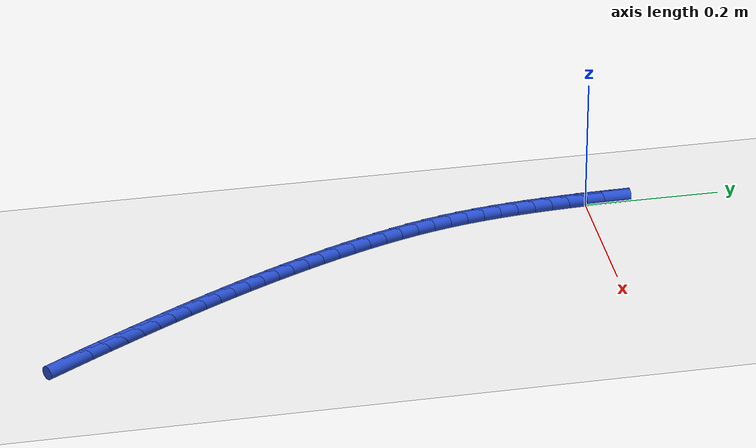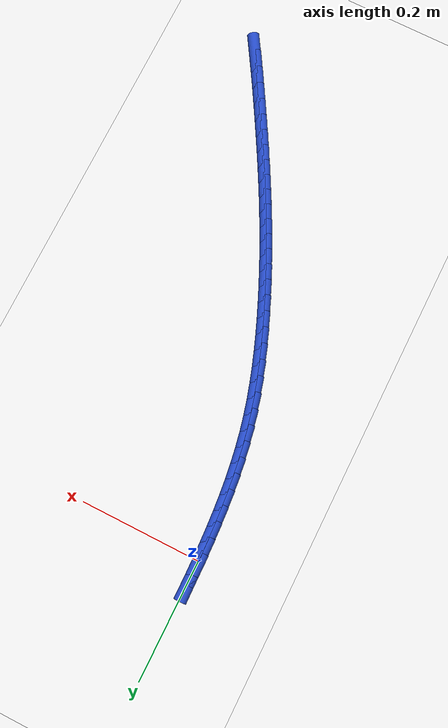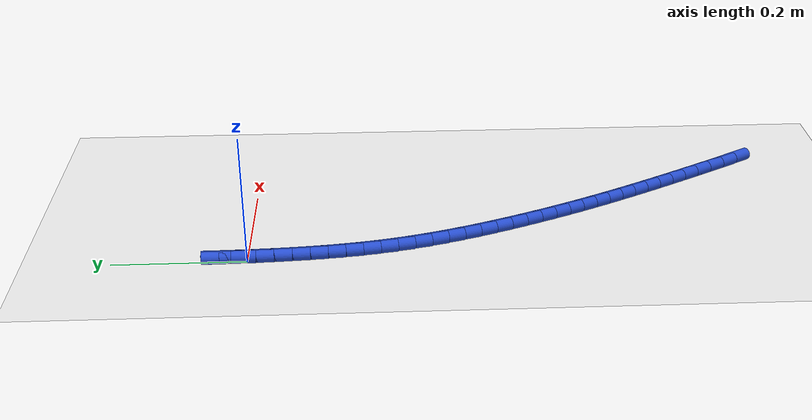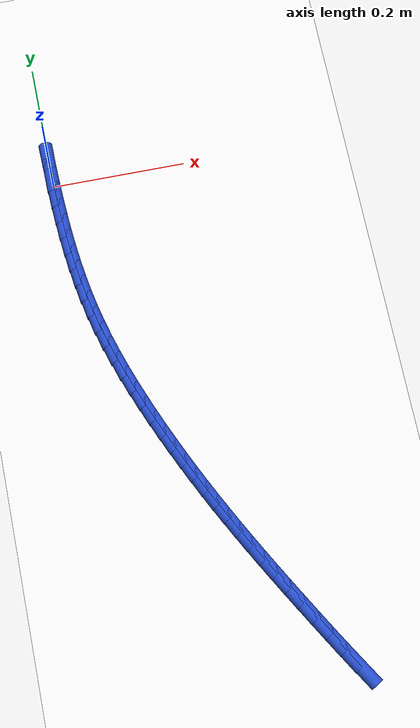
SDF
<sdf version="1.6">
 <world name="default">
  <model name="ground_plane">
   <static>1</static>
   <link name="link">
    <collision name="collision">
     <geometry><plane><normal>0 0 1</normal><size>100 100</size></plane></geometry>
     <surface><friction><ode><mu>100</mu><mu2>50</mu2></ode></friction></surface>
    </collision>
    <visual name="visual">
     <cast_shadows>0</cast_shadows>
     <geometry><plane><normal>0 0 1</normal><size>100 100</size></plane></geometry>
     <material>
      <script><uri>file://media/materials/scripts/gazebo.material</uri><name>Gazebo/WhiteGlow</name></script>
     </material>
    </visual>
   </link>
  </model>
  <model name="line">
   <link name="link_0">
    <pose>3.686287386450715e-18 -6.938893903907228e-18 0.01 0 1.57 -1.5429442170032874</pose>
    <collision name="collision">
     <geometry><cylinder><radius>0.01</radius><length>0.08</length></cylinder></geometry>
    </collision>
    <visual name="visual">
     <material>
      <script><name>Gazebo/Blue</name><uri>file://media/materials/scripts/gazebo.material</uri></script>
     </material>
     <geometry><cylinder><radius>0.01</radius><length>0.08</length></cylinder></geometry>
    </visual>
   </link>
   <link name="link_1">
    <pose>-0.0007413888448551236 0.026611884419287215 0.01 0 1.57 -1.5613368921261304</pose>
    <collision name="collision">
     <geometry><cylinder><radius>0.01</radius><length>0.08</length></cylinder></geometry>
    </collision>
    <visual name="visual">
     <material>
      <script><name>Gazebo/Blue</name><uri>file://media/materials/scripts/gazebo.material</uri></script>
     </material>
     <geometry><cylinder><radius>0.01</radius><length>0.08</length></cylinder></geometry>
    </visual>
   </link>
   <link name="link_258">
    <pose>0.2878976144368327 -0.7874344967608682 0.01 0 1.57 -1.0242596729951108</pose>
    <collision name="collision">
     <geometry><cylinder><radius>0.01</radius><length>0.08</length></cylinder></geometry>
    </collision>
    <visual name="visual">
     <material>
      <script><name>Gazebo/Blue</name><uri>file://media/materials/scripts/gazebo.material</uri></script>
     </material>
     <geometry><cylinder><radius>0.01</radius><length>0.08</length></cylinder></geometry>
    </visual>
   </link>
   <link name="link_259">
    <pose>0.27193514273092695 -0.7611955395784575 0.01 0 1.57 -1.0372141460871618</pose>
    <collision name="collision">
     <geometry><cylinder><radius>0.01</radius><length>0.08</length></cylinder></geometry>
    </collision>
    <visual name="visual">
     <material>
      <script><name>Gazebo/Blue</name><uri>file://media/materials/scripts/gazebo.material</uri></script>
     </material>
     <geometry><cylinder><radius>0.01</radius><length>0.08</length></cylinder></geometry>
    </visual>
   </link>
   <link name="link_260">
    <pose>0.256540407097656 -0.7351354128372416 0.01 0 1.57 -1.0441541454144831</pose>
    <collision name="collision">
     <geometry><cylinder><radius>0.01</radius><length>0.08</length></cylinder></geometry>
    </collision>
    <visual name="visual">
     <material>
      <script><name>Gazebo/Blue</name><uri>file://media/materials/scripts/gazebo.material</uri></script>
     </material>
     <geometry><cylinder><radius>0.01</radius><length>0.08</length></cylinder></geometry>
    </visual>
   </link>
   <link name="link_261">
    <pose>0.24170435999519774 -0.7096182874151283 0.01 0 1.57 -1.0484710041932055</pose>
    <collision name="collision">
     <geometry><cylinder><radius>0.01</radius><length>0.08</length></cylinder></geometry>
    </collision>
    <visual name="visual">
     <material>
      <script><name>Gazebo/Blue</name><uri>file://media/materials/scripts/gazebo.material</uri></script>
     </material>
     <geometry><cylinder><radius>0.01</radius><length>0.08</length></cylinder></geometry>
    </visual>
   </link>
   <link name="link_262">
    <pose>0.2274079906640783 -0.68478326533313 0.01 0 1.57 -1.053591439978198</pose>
    <collision name="collision">
     <geometry><cylinder><radius>0.01</radius><length>0.08</length></cylinder></geometry>
    </collision>
    <visual name="visual">
     <material>
      <script><name>Gazebo/Blue</name><uri>file://media/materials/scripts/gazebo.material</uri></script>
     </material>
     <geometry><cylinder><radius>0.01</radius><length>0.08</length></cylinder></geometry>
    </visual>
   </link>
   <link name="link_263">
    <pose>0.21362255953247036 -0.6605496749656435 0.01 0 1.57 -1.0596879584952485</pose>
    <collision name="collision">
     <geometry><cylinder><radius>0.01</radius><length>0.08</length></cylinder></geometry>
    </collision>
    <visual name="visual">
     <material>
      <script><name>Gazebo/Blue</name><uri>file://media/materials/scripts/gazebo.material</uri></script>
     </material>
     <geometry><cylinder><radius>0.01</radius><length>0.08</length></cylinder></geometry>
    </visual>
   </link>
   <link name="link_264">
    <pose>0.20031892193915155 -0.6368276937269761 0.01 0 1.57 -1.0667715650497394</pose>
    <collision name="collision">
     <geometry><cylinder><radius>0.01</radius><length>0.08</length></cylinder></geometry>
    </collision>
    <visual name="visual">
     <material>
      <script><name>Gazebo/Blue</name><uri>file://media/materials/scripts/gazebo.material</uri></script>
     </material>
     <geometry><cylinder><radius>0.01</radius><length>0.08</length></cylinder></geometry>
    </visual>
   </link>
   <link name="link_265">
    <pose>0.1874679332228999 -0.6135274990314363 0.01 0 1.57 -1.0748328521978128</pose>
    <collision name="collision">
     <geometry><cylinder><radius>0.01</radius><length>0.08</length></cylinder></geometry>
    </collision>
    <visual name="visual">
     <material>
      <script><name>Gazebo/Blue</name><uri>file://media/materials/scripts/gazebo.material</uri></script>
     </material>
     <geometry><cylinder><radius>0.01</radius><length>0.08</length></cylinder></geometry>
    </visual>
   </link>
   <link name="link_266">
    <pose>0.1750404487224921 -0.5905592682933295 0.01 0 1.57 -1.0838398418562418</pose>
    <collision name="collision">
     <geometry><cylinder><radius>0.01</radius><length>0.08</length></cylinder></geometry>
    </collision>
    <visual name="visual">
     <material>
      <script><name>Gazebo/Blue</name><uri>file://media/materials/scripts/gazebo.material</uri></script>
     </material>
     <geometry><cylinder><radius>0.01</radius><length>0.08</length></cylinder></geometry>
    </visual>
   </link>
   <link name="link_267">
    <pose>0.16300732377670626 -0.567833178926964 0.01 0 1.57 -1.0937368057999686</pose>
    <collision name="collision">
     <geometry><cylinder><radius>0.01</radius><length>0.08</length></cylinder></geometry>
    </collision>
    <visual name="visual">
     <material>
      <script><name>Gazebo/Blue</name><uri>file://media/materials/scripts/gazebo.material</uri></script>
     </material>
     <geometry><cylinder><radius>0.01</radius><length>0.08</length></cylinder></geometry>
    </visual>
   </link>
   <link name="link_268">
    <pose>0.15133941372432005 -0.5452594083466478 0.01 0 1.57 -1.1044443163669038</pose>
    <collision name="collision">
     <geometry><cylinder><radius>0.01</radius><length>0.08</length></cylinder></geometry>
    </collision>
    <visual name="visual">
     <material>
      <script><name>Gazebo/Blue</name><uri>file://media/materials/scripts/gazebo.material</uri></script>
     </material>
     <geometry><cylinder><radius>0.01</radius><length>0.08</length></cylinder></geometry>
    </visual>
   </link>
   <link name="link_269">
    <pose>0.14000757390411095 -0.5227481339666873 0.01 0 1.57 -1.1158606869284562</pose>
    <collision name="collision">
     <geometry><cylinder><radius>0.01</radius><length>0.08</length></cylinder></geometry>
    </collision>
    <visual name="visual">
     <material>
      <script><name>Gazebo/Blue</name><uri>file://media/materials/scripts/gazebo.material</uri></script>
     </material>
     <geometry><cylinder><radius>0.01</radius><length>0.08</length></cylinder></geometry>
    </visual>
   </link>
   <link name="link_270">
    <pose>0.1289826596548566 -0.5002095332013907 0.01 0 1.57 -1.1278648295024767</pose>
    <collision name="collision">
     <geometry><cylinder><radius>0.01</radius><length>0.08</length></cylinder></geometry>
    </collision>
    <visual name="visual">
     <material>
      <script><name>Gazebo/Blue</name><uri>file://media/materials/scripts/gazebo.material</uri></script>
     </material>
     <geometry><cylinder><radius>0.01</radius><length>0.08</length></cylinder></geometry>
    </visual>
   </link>
   <link name="link_271">
    <pose>0.1182355263153347 -0.47755378346506505 0.01 0 1.57 -1.1403204013746597</pose>
    <collision name="collision">
     <geometry><cylinder><radius>0.01</radius><length>0.08</length></cylinder></geometry>
    </collision>
    <visual name="visual">
     <material>
      <script><name>Gazebo/Blue</name><uri>file://media/materials/scripts/gazebo.material</uri></script>
     </material>
     <geometry><cylinder><radius>0.01</radius><length>0.08</length></cylinder></geometry>
    </visual>
   </link>
   <link name="link_272">
    <pose>0.1077370292243227 -0.4546910621720177 0.01 0 1.57 -1.1530809587544673</pose>
    <collision name="collision">
     <geometry><cylinder><radius>0.01</radius><length>0.08</length></cylinder></geometry>
    </collision>
    <visual name="visual">
     <material>
      <script><name>Gazebo/Blue</name><uri>file://media/materials/scripts/gazebo.material</uri></script>
     </material>
     <geometry><cylinder><radius>0.01</radius><length>0.08</length></cylinder></geometry>
    </visual>
   </link>
   <link name="link_273">
    <pose>0.09745802372059834 -0.43153154673655636 0.01 0 1.57 -1.1660414283051697</pose>
    <collision name="collision">
     <geometry><cylinder><radius>0.01</radius><length>0.08</length></cylinder></geometry>
    </collision>
    <visual name="visual">
     <material>
      <script><name>Gazebo/Blue</name><uri>file://media/materials/scripts/gazebo.material</uri></script>
     </material>
     <geometry><cylinder><radius>0.01</radius><length>0.08</length></cylinder></geometry>
    </visual>
   </link>
   <link name="link_274">
    <pose>0.08737184676003985 -0.407988233305371 0.01 0 1.57 -1.1801206015993069</pose>
    <collision name="collision">
     <geometry><cylinder><radius>0.01</radius><length>0.08</length></cylinder></geometry>
    </collision>
    <visual name="visual">
     <material>
      <script><name>Gazebo/Blue</name><uri>file://media/materials/scripts/gazebo.material</uri></script>
     </material>
     <geometry><cylinder><radius>0.01</radius><length>0.08</length></cylinder></geometry>
    </visual>
   </link>
   <link name="link_275">
    <pose>0.07750804890252155 -0.3840379679663425 0.01 0 1.57 -1.1963558779782055</pose>
    <collision name="collision">
     <geometry><cylinder><radius>0.01</radius><length>0.08</length></cylinder></geometry>
    </collision>
    <visual name="visual">
     <material>
      <script><name>Gazebo/Blue</name><uri>file://media/materials/scripts/gazebo.material</uri></script>
     </material>
     <geometry><cylinder><radius>0.01</radius><length>0.08</length></cylinder></geometry>
    </visual>
   </link>
   <link name="link_276">
    <pose>0.06795191868508638 -0.3597209065101872 0.01 0 1.57 -1.214860215821651</pose>
    <collision name="collision">
     <geometry><cylinder><radius>0.01</radius><length>0.08</length></cylinder></geometry>
    </collision>
    <visual name="visual">
     <material>
      <script><name>Gazebo/Blue</name><uri>file://media/materials/scripts/gazebo.material</uri></script>
     </material>
     <geometry><cylinder><radius>0.01</radius><length>0.08</length></cylinder></geometry>
    </visual>
   </link>
   <link name="link_277">
    <pose>0.05879113113435949 -0.33507991540988785 0.01 0 1.57 -1.2357291707309235</pose>
    <collision name="collision">
     <geometry><cylinder><radius>0.01</radius><length>0.08</length></cylinder></geometry>
    </collision>
    <visual name="visual">
     <material>
      <script><name>Gazebo/Blue</name><uri>file://media/materials/scripts/gazebo.material</uri></script>
     </material>
     <geometry><cylinder><radius>0.01</radius><length>0.08</length></cylinder></geometry>
    </visual>
   </link>
   <link name="link_278">
    <pose>0.05011336127696616 -0.31015786113842725 0.01 0 1.57 -1.2590830156267905</pose>
    <collision name="collision">
     <geometry><cylinder><radius>0.01</radius><length>0.08</length></cylinder></geometry>
    </collision>
    <visual name="visual">
     <material>
      <script><name>Gazebo/Blue</name><uri>file://media/materials/scripts/gazebo.material</uri></script>
     </material>
     <geometry><cylinder><radius>0.01</radius><length>0.08</length></cylinder></geometry>
    </visual>
   </link>
   <link name="link_279">
    <pose>0.04200628413953154 -0.2849976101687882 0.01 0 1.57 -1.285064872324482</pose>
    <collision name="collision">
     <geometry><cylinder><radius>0.01</radius><length>0.08</length></cylinder></geometry>
    </collision>
    <visual name="visual">
     <material>
      <script><name>Gazebo/Blue</name><uri>file://media/materials/scripts/gazebo.material</uri></script>
     </material>
     <geometry><cylinder><radius>0.01</radius><length>0.08</length></cylinder></geometry>
    </visual>
   </link>
   <link name="link_280">
    <pose>0.03455757474868109 -0.2596420289739543 0.01 0 1.57 -1.3138384384568813</pose>
    <collision name="collision">
     <geometry><cylinder><radius>0.01</radius><length>0.08</length></cylinder></geometry>
    </collision>
    <visual name="visual">
     <material>
      <script><name>Gazebo/Blue</name><uri>file://media/materials/scripts/gazebo.material</uri></script>
     </material>
     <geometry><cylinder><radius>0.01</radius><length>0.08</length></cylinder></geometry>
    </visual>
   </link>
   <link name="link_281">
    <pose>0.02785490813103951 -0.2341339840269065 0.01 0 1.57 -1.3455696307161749</pose>
    <collision name="collision">
     <geometry><cylinder><radius>0.01</radius><length>0.08</length></cylinder></geometry>
    </collision>
    <visual name="visual">
     <material>
      <script><name>Gazebo/Blue</name><uri>file://media/materials/scripts/gazebo.material</uri></script>
     </material>
     <geometry><cylinder><radius>0.01</radius><length>0.08</length></cylinder></geometry>
    </visual>
   </link>
   <link name="link_282">
    <pose>0.02198551781635965 -0.20851620643320506 0.01 0 1.57 -1.3785963929401561</pose>
    <collision name="collision">
     <geometry><cylinder><radius>0.01</radius><length>0.08</length></cylinder></geometry>
    </collision>
    <visual name="visual">
     <material>
      <script><name>Gazebo/Blue</name><uri>file://media/materials/scripts/gazebo.material</uri></script>
     </material>
     <geometry><cylinder><radius>0.01</radius><length>0.08</length></cylinder></geometry>
    </visual>
   </link>
   <link name="link_283">
    <pose>0.016984069022726835 -0.1828153093203612 0.01 0 1.57 -1.4093327028126492</pose>
    <collision name="collision">
     <geometry><cylinder><radius>0.01</radius><length>0.08</length></cylinder></geometry>
    </collision>
    <visual name="visual">
     <material>
      <script><name>Gazebo/Blue</name><uri>file://media/materials/scripts/gazebo.material</uri></script>
     </material>
     <geometry><cylinder><radius>0.01</radius><length>0.08</length></cylinder></geometry>
    </visual>
   </link>
   <link name="link_284">
    <pose>0.012783586987607159 -0.15702674196594457 0.01 0 1.57 -1.437225445598576</pose>
    <collision name="collision">
     <geometry><cylinder><radius>0.01</radius><length>0.08</length></cylinder></geometry>
    </collision>
    <visual name="visual">
     <material>
      <script><name>Gazebo/Blue</name><uri>file://media/materials/scripts/gazebo.material</uri></script>
     </material>
     <geometry><cylinder><radius>0.01</radius><length>0.08</length></cylinder></geometry>
    </visual>
   </link>
   <link name="link_285">
    <pose>0.009305482484113739 -0.13114239253484067 0.01 0 1.57 -1.4621641971754866</pose>
    <collision name="collision">
     <geometry><cylinder><radius>0.01</radius><length>0.08</length></cylinder></geometry>
    </collision>
    <visual name="visual">
     <material>
      <script><name>Gazebo/Blue</name><uri>file://media/materials/scripts/gazebo.material</uri></script>
     </material>
     <geometry><cylinder><radius>0.01</radius><length>0.08</length></cylinder></geometry>
    </visual>
   </link>
   <link name="link_286">
    <pose>0.0064711662853597154 -0.10515414919193493 0.01 0 1.57 -1.484075851236615</pose>
    <collision name="collision">
     <geometry><cylinder><radius>0.01</radius><length>0.08</length></cylinder></geometry>
    </collision>
    <visual name="visual">
     <material>
      <script><name>Gazebo/Blue</name><uri>file://media/materials/scripts/gazebo.material</uri></script>
     </material>
     <geometry><cylinder><radius>0.01</radius><length>0.08</length></cylinder></geometry>
    </visual>
   </link>
   <link name="link_287">
    <pose>0.004202049164458203 -0.07905390010211258 0.01 0 1.57 -1.5029189810847834</pose>
    <collision name="collision">
     <geometry><cylinder><radius>0.01</radius><length>0.08</length></cylinder></geometry>
    </collision>
    <visual name="visual">
     <material>
      <script><name>Gazebo/Blue</name><uri>file://media/materials/scripts/gazebo.material</uri></script>
     </material>
     <geometry><cylinder><radius>0.01</radius><length>0.08</length></cylinder></geometry>
    </visual>
   </link>
   <link name="link_288">
    <pose>0.0024195418945223294 -0.052833533430259066 0.01 0 1.57 -1.518678107450539</pose>
    <collision name="collision">
     <geometry><cylinder><radius>0.01</radius><length>0.08</length></cylinder></geometry>
    </collision>
    <visual name="visual">
     <material>
      <script><name>Gazebo/Blue</name><uri>file://media/materials/scripts/gazebo.material</uri></script>
     </material>
     <geometry><cylinder><radius>0.01</radius><length>0.08</length></cylinder></geometry>
    </visual>
   </link>
   <link name="link_289">
    <pose>0.00104505524866522 -0.0264849373412597 0.01 0 1.57 -1.531358310852094</pose>
    <collision name="collision">
     <geometry><cylinder><radius>0.01</radius><length>0.08</length></cylinder></geometry>
    </collision>
    <visual name="visual">
     <material>
      <script><name>Gazebo/Blue</name><uri>file://media/materials/scripts/gazebo.material</uri></script>
     </material>
     <geometry><cylinder><radius>0.01</radius><length>0.08</length></cylinder></geometry>
    </visual>
   </link>
   <link name="link_290">
    <pose>-1.3010426069826053e-18 1.1796119636642288e-16 0.01 0 1.57 -1.5409804840763244</pose>
    <collision name="collision">
     <geometry><cylinder><radius>0.01</radius><length>0.08</length></cylinder></geometry>
    </collision>
    <visual name="visual">
     <material>
      <script><name>Gazebo/Blue</name><uri>file://media/materials/scripts/gazebo.material</uri></script>
     </material>
     <geometry><cylinder><radius>0.01</radius><length>0.08</length></cylinder></geometry>
    </visual>
   </link>
   <link name="link_291">
    <pose>-0.0007942130783601868 0.026629390428634176 0.01 0 1.57 -1.5475773962630677</pose>
    <collision name="collision">
     <geometry><cylinder><radius>0.01</radius><length>0.08</length></cylinder></geometry>
    </collision>
    <visual name="visual">
     <material>
      <script><name>Gazebo/Blue</name><uri>file://media/materials/scripts/gazebo.material</uri></script>
     </material>
     <geometry><cylinder><radius>0.01</radius><length>0.08</length></cylinder></geometry>
    </visual>
   </link>
  </model>
 </world>
</sdf>
